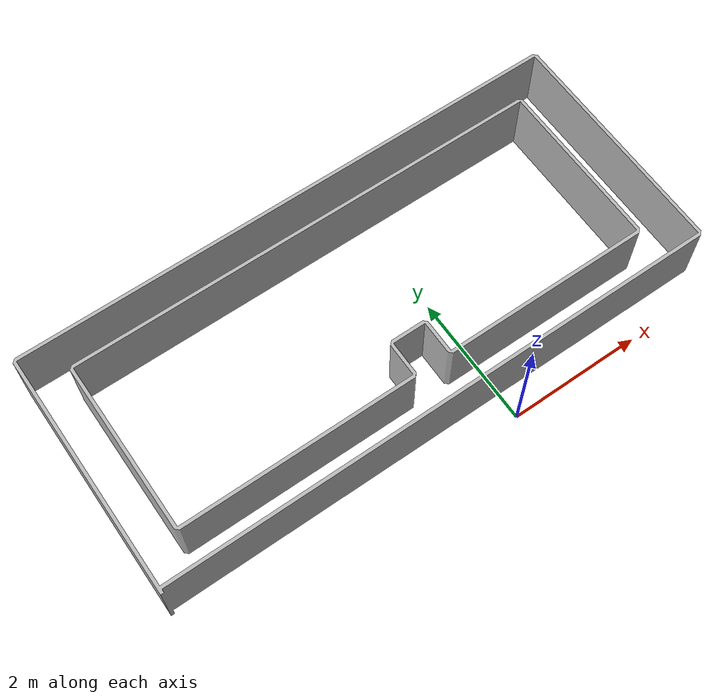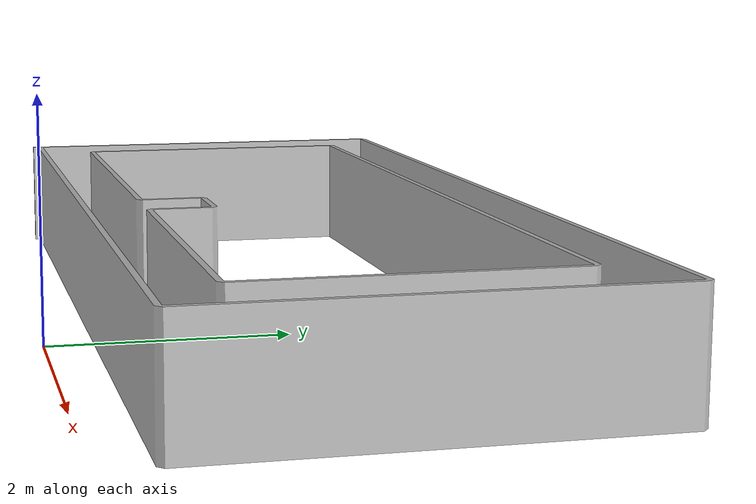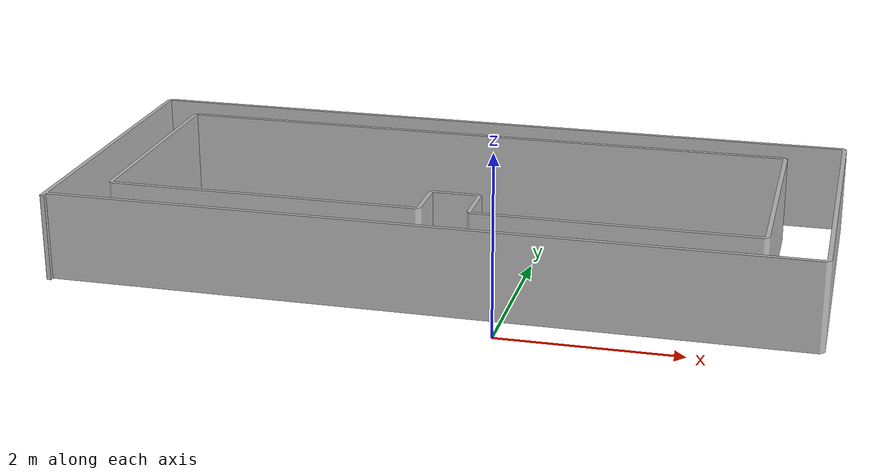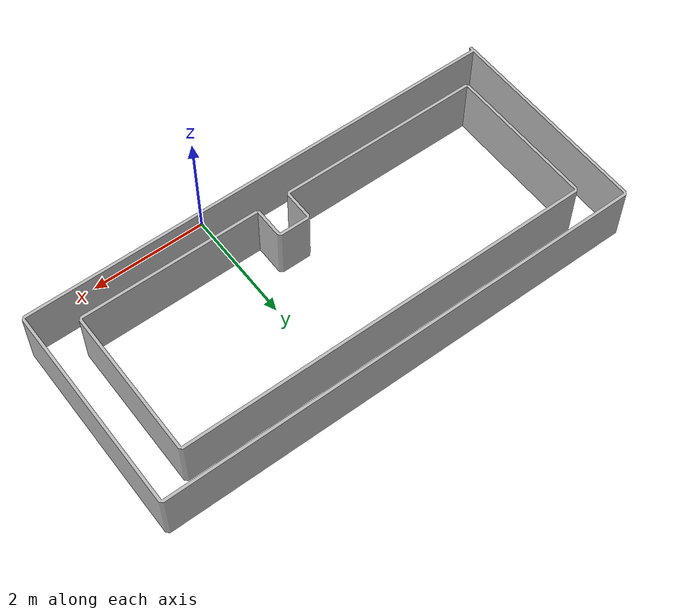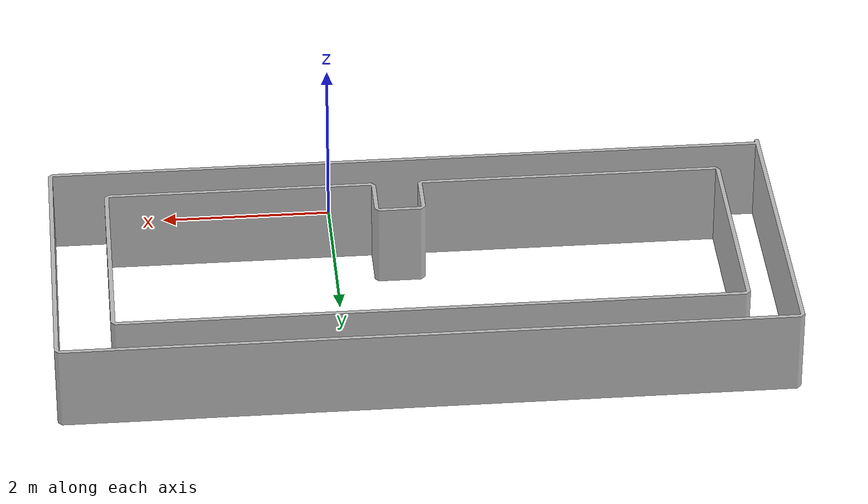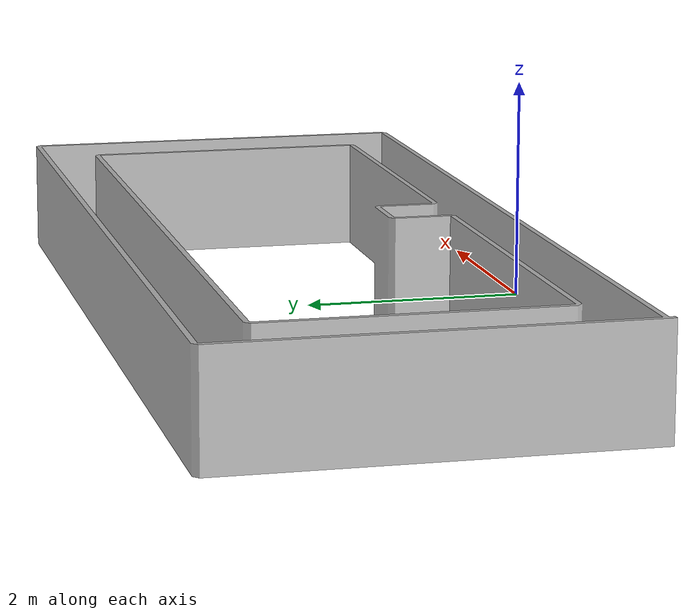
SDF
<?xml version="1.0" ?>
<sdf version="1.6">
  <model name="drawn_model">
    <link name="link">
      <!-- Center STL AABB on model origin so world poses (±10,±10) sit in zone centers. -->
      <collision name="collision">
        <pose>-6.000000 4.950000 0 0 0 0</pose>
        <geometry>
          <mesh>
            <uri>model://drawn_model/map.stl</uri>
          </mesh>
        </geometry>
      </collision>
      <visual name="visual">
        <pose>-6.000000 4.950000 0 0 0 0</pose>
        <geometry>
          <mesh>
            <uri>model://drawn_model/map.stl</uri>
          </mesh>
        </geometry>
      </visual>
    </link>
    <static>1</static>
  </model>
</sdf>
